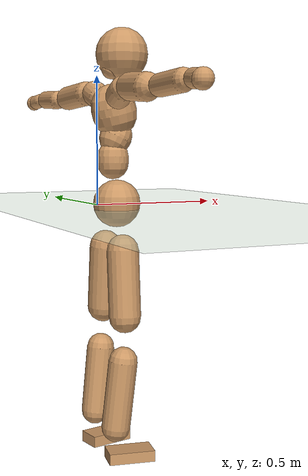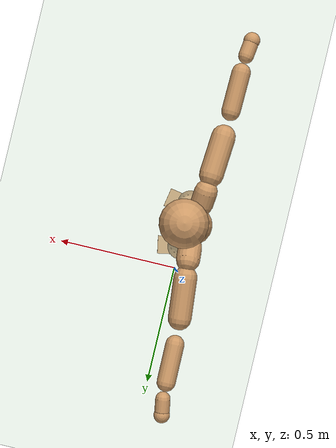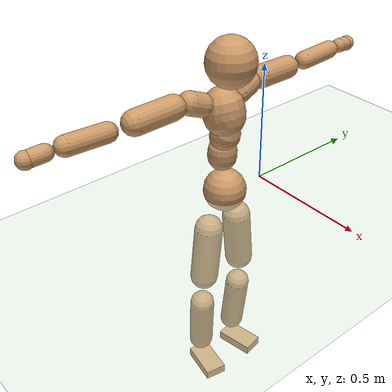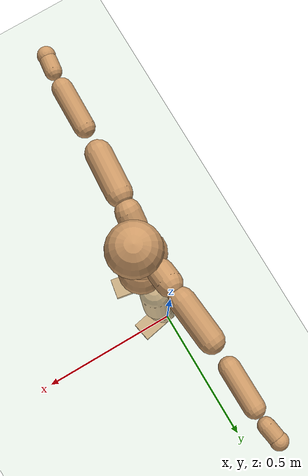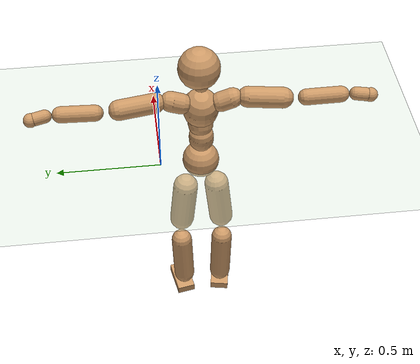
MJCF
<mujoco model="humanoid">
  <compiler coordinate="local"/>
  <default>
    <joint damping="0.0" armature="0.01" stiffness="0.0" limited="true"/>
    <geom conaffinity="1" condim="3" contype="7" margin="0.001" rgba="0.8 0.6 .4 1"/>
  </default>
  <asset>
    <texture type="skybox" builtin="gradient" rgb1=".4 .5 .6" rgb2="0 0 0" width="100" height="100"/>
    <texture builtin="flat" height="1278" mark="cross" markrgb="1 1 1" name="texgeom" random="0.01" rgb1="0.8 0.6 0.4" rgb2="0.8 0.6 0.4" type="cube" width="127"/>
    <texture builtin="checker" height="100" name="texplane" rgb1="0 0 0" rgb2="0.8 0.8 0.8" type="2d" width="100"/>
    <material name="MatPlane" reflectance="0.5" shininess="1" specular="1" texrepeat="60 60" texture="texplane"/>
    <material name="geom" texture="texgeom" texuniform="true"/>
  </asset>
  <worldbody>
    <light cutoff="100" diffuse="1 1 1" dir="-0 0 -1.3" directional="true" exponent="1" pos="0 0 1.3" specular=".1 .1 .1"/>
    <geom conaffinity="1" condim="3" name="floor" pos="0 0 0" rgba="0.8 0.9 0.8 1" size="100 100 .2" type="plane" material="MatPlane"/>
    <body name="Pelvis" pos="-0.0004 -0.1935 0.0199">
      <freejoint name="Pelvis"/>
      <geom type="sphere" contype="1" conaffinity="1" density="500" size="0.0883" pos="0.0000 0.0000 0.0000" name="Pelvis"/>
      <body name="L_Hip" pos="-0.0135 0.0699 -0.0883">
        <joint name="L_Hip_x" type="hinge" pos="0 0 0" axis="1 0 0" stiffness="800" damping="80" armature="0.02" range="-180.0000 180.0000"/>
        <joint name="L_Hip_y" type="hinge" pos="0 0 0" axis="0 1 0" stiffness="800" damping="80" armature="0.02" range="-180.0000 180.0000"/>
        <joint name="L_Hip_z" type="hinge" pos="0 0 0" axis="0 0 1" stiffness="800" damping="80" armature="0.02" range="-180.0000 180.0000"/>
        <geom type="capsule" contype="1" conaffinity="1" density="500" fromto="-0.0003 0.0075 -0.0795 -0.0014 0.0298 -0.3179" size="0.0603" name="L_Hip"/>
        <body name="L_Knee" pos="-0.0017 0.0373 -0.3974">
          <joint name="L_Knee_x" type="hinge" pos="0 0 0" axis="1 0 0" stiffness="800" damping="80" armature="0.02" range="-180.0000 180.0000"/>
          <joint name="L_Knee_y" type="hinge" pos="0 0 0" axis="0 1 0" stiffness="800" damping="80" armature="0.02" range="-180.0000 180.0000"/>
          <joint name="L_Knee_z" type="hinge" pos="0 0 0" axis="0 0 1" stiffness="800" damping="80" armature="0.02" range="-180.0000 180.0000"/>
          <geom type="capsule" contype="1" conaffinity="1" density="500" fromto="-0.0090 -0.0026 -0.0840 -0.0360 -0.0102 -0.3360" size="0.0529" name="L_Knee"/>
          <body name="L_Ankle" pos="-0.045 -0.0128 -0.42">
            <joint name="L_Ankle_x" type="hinge" pos="0 0 0" axis="1 0 0" stiffness="800" damping="80" armature="0.02" range="-180.0000 180.0000"/>
            <joint name="L_Ankle_y" type="hinge" pos="0 0 0" axis="0 1 0" stiffness="800" damping="80" armature="0.02" range="-180.0000 180.0000"/>
            <joint name="L_Ankle_z" type="hinge" pos="0 0 0" axis="0 0 1" stiffness="800" damping="80" armature="0.02" range="-180.0000 180.0000"/>
            <geom type="box" contype="1" conaffinity="1" density="500" pos="0.0598 0.0112 -0.0293" size="0.0847 0.045 0.0212" quat="0.9957 0.0000 0.0000 0.0928" name="L_Ankle"/>
            <body name="L_Toe" pos="0.1196 0.0225 -0.0586">
              <joint name="L_Toe_x" type="hinge" pos="0 0 0" axis="1 0 0" stiffness="500" damping="50" armature="0.02" range="-180.0000 180.0000"/>
              <joint name="L_Toe_y" type="hinge" pos="0 0 0" axis="0 1 0" stiffness="500" damping="50" armature="0.02" range="-180.0000 180.0000"/>
              <joint name="L_Toe_z" type="hinge" pos="0 0 0" axis="0 0 1" stiffness="500" damping="50" armature="0.02" range="-180.0000 180.0000"/>
              <geom type="box" contype="1" conaffinity="1" density="500" pos="0.0000 0.0000 0.0288" size="0.0009 0.0023 0.001" quat="0.9951 0.0000 0.0000 0.0992" name="L_Toe"/>
            </body>
          </body>
        </body>
      </body>
      <body name="R_Hip" pos="-0.0092 -0.0678 -0.0869">
        <joint name="R_Hip_x" type="hinge" pos="0 0 0" axis="1 0 0" stiffness="800" damping="80" armature="0.02" range="-180.0000 180.0000"/>
        <joint name="R_Hip_y" type="hinge" pos="0 0 0" axis="0 1 0" stiffness="800" damping="80" armature="0.02" range="-180.0000 180.0000"/>
        <joint name="R_Hip_z" type="hinge" pos="0 0 0" axis="0 0 1" stiffness="800" damping="80" armature="0.02" range="-180.0000 180.0000"/>
        <geom type="capsule" contype="1" conaffinity="1" density="500" fromto="-0.0009 -0.0087 -0.0808 -0.0037 -0.0346 -0.3232" size="0.0595" name="R_Hip"/>
        <body name="R_Knee" pos="-0.0047 -0.0433 -0.4041">
          <joint name="R_Knee_x" type="hinge" pos="0 0 0" axis="1 0 0" stiffness="800" damping="80" armature="0.02" range="-180.0000 180.0000"/>
          <joint name="R_Knee_y" type="hinge" pos="0 0 0" axis="0 1 0" stiffness="800" damping="80" armature="0.02" range="-180.0000 180.0000"/>
          <joint name="R_Knee_z" type="hinge" pos="0 0 0" axis="0 0 1" stiffness="800" damping="80" armature="0.02" range="-180.0000 180.0000"/>
          <geom type="capsule" contype="1" conaffinity="1" density="500" fromto="-0.0085 0.0032 -0.0840 -0.0342 0.0128 -0.3362" size="0.0532" name="R_Knee"/>
          <body name="R_Ankle" pos="-0.0427 0.016 -0.4202">
            <joint name="R_Ankle_x" type="hinge" pos="0 0 0" axis="1 0 0" stiffness="800" damping="80" armature="0.02" range="-180.0000 180.0000"/>
            <joint name="R_Ankle_y" type="hinge" pos="0 0 0" axis="0 1 0" stiffness="800" damping="80" armature="0.02" range="-180.0000 180.0000"/>
            <joint name="R_Ankle_z" type="hinge" pos="0 0 0" axis="0 0 1" stiffness="800" damping="80" armature="0.02" range="-180.0000 180.0000"/>
            <geom type="box" contype="1" conaffinity="1" density="500" pos="0.0616 -0.0112 -0.0250" size="0.0865 0.0465 0.0208" quat="0.9959 0.0000 0.0000 -0.0900" name="R_Ankle"/>
            <body name="R_Toe" pos="0.1233 -0.0225 -0.0501">
              <joint name="R_Toe_x" type="hinge" pos="0 0 0" axis="1 0 0" stiffness="500" damping="50" armature="0.02" range="-180.0000 180.0000"/>
              <joint name="R_Toe_y" type="hinge" pos="0 0 0" axis="0 1 0" stiffness="500" damping="50" armature="0.02" range="-180.0000 180.0000"/>
              <joint name="R_Toe_z" type="hinge" pos="0 0 0" axis="0 0 1" stiffness="500" damping="50" armature="0.02" range="-180.0000 180.0000"/>
              <geom type="box" contype="1" conaffinity="1" density="500" pos="0.0000 0.0000 0.0268" size="0.0009 0.0023 0.0011" quat="0.9967 0.0000 0.0000 -0.0809" name="R_Toe"/>
            </body>
          </body>
        </body>
      </body>
      <body name="Torso" pos="-0.0158 -0.002 0.1005">
        <joint name="Torso_x" type="hinge" pos="0 0 0" axis="1 0 0" stiffness="1000" damping="100" armature="0.02" range="-180.0000 180.0000"/>
        <joint name="Torso_y" type="hinge" pos="0 0 0" axis="0 1 0" stiffness="1000" damping="100" armature="0.02" range="-180.0000 180.0000"/>
        <joint name="Torso_z" type="hinge" pos="0 0 0" axis="0 0 1" stiffness="1000" damping="100" armature="0.02" range="-180.0000 180.0000"/>
        <geom type="capsule" contype="1" conaffinity="1" density="500" fromto="0.0005 0.0018 0.0727 0.0003 0.0012 0.0485" size="0.058497" name="Torso"/>
        <body name="Spine" pos="0.0008 0.003 0.1212">
          <joint name="Spine_x" type="hinge" pos="0 0 0" axis="1 0 0" stiffness="1000" damping="100" armature="0.02" range="-180.0000 180.0000"/>
          <joint name="Spine_y" type="hinge" pos="0 0 0" axis="0 1 0" stiffness="1000" damping="100" armature="0.02" range="-180.0000 180.0000"/>
          <joint name="Spine_z" type="hinge" pos="0 0 0" axis="0 0 1" stiffness="1000" damping="100" armature="0.02" range="-180.0000 180.0000"/>
          <geom type="capsule" contype="1" conaffinity="1" density="500" fromto="0.0140 0.0009 0.0284 0.0093 0.0006 0.0189" size="0.059985" name="Spine"/>
          <body name="Chest" pos="0.0233 0.0016 0.0473">
            <joint name="Chest_x" type="hinge" pos="0 0 0" axis="1 0 0" stiffness="1000" damping="100" armature="0.02" range="-180.0000 180.0000"/>
            <joint name="Chest_y" type="hinge" pos="0 0 0" axis="0 1 0" stiffness="1000" damping="100" armature="0.02" range="-180.0000 180.0000"/>
            <joint name="Chest_z" type="hinge" pos="0 0 0" axis="0 0 1" stiffness="1000" damping="100" armature="0.02" range="-180.0000 180.0000"/>
            <geom type="capsule" contype="1" conaffinity="1" density="500" fromto="-0.0227 -0.0013 0.0869 -0.0151 -0.0008 0.0579" size="0.082677" name="Chest"/>
            <body name="Neck" pos="-0.04 -0.0037 0.208">
              <joint name="Neck_x" type="hinge" pos="0 0 0" axis="1 0 0" stiffness="500" damping="50" armature="0.02" range="-180.0000 180.0000"/>
              <joint name="Neck_y" type="hinge" pos="0 0 0" axis="0 1 0" stiffness="500" damping="50" armature="0.02" range="-180.0000 180.0000"/>
              <joint name="Neck_z" type="hinge" pos="0 0 0" axis="0 0 1" stiffness="500" damping="50" armature="0.02" range="-180.0000 180.0000"/>
              <geom type="capsule" contype="1" conaffinity="1" density="500" fromto="0.0109 0.0012 0.0136 0.0435 0.0047 0.0545" size="0.036921" name="Neck"/>
              <body name="Head" pos="0.0544 0.0059 0.0682">
                <joint name="Head_x" type="hinge" pos="0 0 0" axis="1 0 0" stiffness="500" damping="50" armature="0.02" range="-180.0000 180.0000"/>
                <joint name="Head_y" type="hinge" pos="0 0 0" axis="0 1 0" stiffness="500" damping="50" armature="0.02" range="-180.0000 180.0000"/>
                <joint name="Head_z" type="hinge" pos="0 0 0" axis="0 0 1" stiffness="500" damping="50" armature="0.02" range="-180.0000 180.0000"/>
                <geom type="sphere" contype="1" conaffinity="1" density="500" size="0.0966" pos="0.0000 0.0000 0.0000" name="Head"/>
              </body>
            </body>
            <body name="L_Thorax" pos="-0.0346 0.0708 0.114">
              <joint name="L_Thorax_x" type="hinge" pos="0 0 0" axis="1 0 0" stiffness="500" damping="50" armature="0.02" range="-180.0000 180.0000"/>
              <joint name="L_Thorax_y" type="hinge" pos="0 0 0" axis="0 1 0" stiffness="500" damping="50" armature="0.02" range="-180.0000 180.0000"/>
              <joint name="L_Thorax_z" type="hinge" pos="0 0 0" axis="0 0 1" stiffness="500" damping="50" armature="0.02" range="-180.0000 180.0000"/>
              <geom type="capsule" contype="1" conaffinity="1" density="500" fromto="-0.0010 0.0164 0.0067 -0.0040 0.0656 0.0270" size="0.0475" name="L_Thorax"/>
              <body name="L_Shoulder" pos="-0.005 0.082 0.0337">
                <joint name="L_Shoulder_x" type="hinge" pos="0 0 0" axis="1 0 0" stiffness="500" damping="50" armature="0.02" range="-720.0000 720.0000"/>
                <joint name="L_Shoulder_y" type="hinge" pos="0 0 0" axis="0 1 0" stiffness="500" damping="50" armature="0.02" range="-720.0000 720.0000"/>
                <joint name="L_Shoulder_z" type="hinge" pos="0 0 0" axis="0 0 1" stiffness="500" damping="50" armature="0.02" range="-720.0000 720.0000"/>
                <geom type="capsule" contype="1" conaffinity="1" density="500" fromto="-0.0052 0.0538 -0.0035 -0.0210 0.2150 -0.0141" size="0.0468" name="L_Shoulder"/>
                <body name="L_Elbow" pos="-0.0262 0.2688 -0.0176">
                  <joint name="L_Elbow_x" type="hinge" pos="0 0 0" axis="1 0 0" stiffness="500" damping="50" armature="0.02" range="-720.0000 720.0000"/>
                  <joint name="L_Elbow_y" type="hinge" pos="0 0 0" axis="0 1 0" stiffness="500" damping="50" armature="0.02" range="-720.0000 720.0000"/>
                  <joint name="L_Elbow_z" type="hinge" pos="0 0 0" axis="0 0 1" stiffness="500" damping="50" armature="0.02" range="-720.0000 720.0000"/>
                  <geom type="capsule" contype="1" conaffinity="1" density="500" fromto="-0.0003 0.0507 0.0022 -0.0011 0.2029 0.0088" size="0.0372" name="L_Elbow"/>
                  <body name="L_Wrist" pos="-0.0013 0.2537 0.0109">
                    <joint name="L_Wrist_x" type="hinge" pos="0 0 0" axis="1 0 0" stiffness="300" damping="30" armature="0.02" range="-180.0000 180.0000"/>
                    <joint name="L_Wrist_y" type="hinge" pos="0 0 0" axis="0 1 0" stiffness="300" damping="30" armature="0.02" range="-180.0000 180.0000"/>
                    <joint name="L_Wrist_z" type="hinge" pos="0 0 0" axis="0 0 1" stiffness="300" damping="30" armature="0.02" range="-180.0000 180.0000"/>
                    <geom type="capsule" contype="1" conaffinity="1" density="500" fromto="-0.0027 0.0160 -0.0020 -0.0108 0.0641 -0.0080" size="0.0298" name="L_Wrist"/>
                    <body name="L_Hand" pos="-0.0135 0.0801 -0.01">
                      <joint name="L_Hand_x" type="hinge" pos="0 0 0" axis="1 0 0" stiffness="300" damping="30" armature="0.02" range="-180.0000 180.0000"/>
                      <joint name="L_Hand_y" type="hinge" pos="0 0 0" axis="0 1 0" stiffness="300" damping="30" armature="0.02" range="-180.0000 180.0000"/>
                      <joint name="L_Hand_z" type="hinge" pos="0 0 0" axis="0 0 1" stiffness="300" damping="30" armature="0.02" range="-180.0000 180.0000"/>
                      <geom type="sphere" contype="1" conaffinity="1" density="500" size="0.0321" pos="0.0000 0.0000 0.0000" name="L_Hand"/>
                    </body>
                  </body>
                </body>
              </body>
            </body>
            <body name="R_Thorax" pos="-0.0388 -0.0734 0.1126">
              <joint name="R_Thorax_x" type="hinge" pos="0 0 0" axis="1 0 0" stiffness="500" damping="50" armature="0.02" range="-180.0000 180.0000"/>
              <joint name="R_Thorax_y" type="hinge" pos="0 0 0" axis="0 1 0" stiffness="500" damping="50" armature="0.02" range="-180.0000 180.0000"/>
              <joint name="R_Thorax_z" type="hinge" pos="0 0 0" axis="0 0 1" stiffness="500" damping="50" armature="0.02" range="-180.0000 180.0000"/>
              <geom type="capsule" contype="1" conaffinity="1" density="500" fromto="-0.0014 -0.0170 0.0072 -0.0055 -0.0679 0.0287" size="0.0464" name="R_Thorax"/>
              <body name="R_Shoulder" pos="-0.0069 -0.0849 0.0359">
                <joint name="R_Shoulder_x" type="hinge" pos="0 0 0" axis="1 0 0" stiffness="500" damping="50" armature="0.02" range="-720.0000 720.0000"/>
                <joint name="R_Shoulder_y" type="hinge" pos="0 0 0" axis="0 1 0" stiffness="500" damping="50" armature="0.02" range="-720.0000 720.0000"/>
                <joint name="R_Shoulder_z" type="hinge" pos="0 0 0" axis="0 0 1" stiffness="500" damping="50" armature="0.02" range="-720.0000 720.0000"/>
                <geom type="capsule" contype="1" conaffinity="1" density="500" fromto="-0.0040 -0.0524 -0.0036 -0.0160 -0.2095 -0.0143" size="0.0485" name="R_Shoulder"/>
                <body name="R_Elbow" pos="-0.02 -0.2619 -0.0179">
                  <joint name="R_Elbow_x" type="hinge" pos="0 0 0" axis="1 0 0" stiffness="500" damping="50" armature="0.02" range="-720.0000 720.0000"/>
                  <joint name="R_Elbow_y" type="hinge" pos="0 0 0" axis="0 1 0" stiffness="500" damping="50" armature="0.02" range="-720.0000 720.0000"/>
                  <joint name="R_Elbow_z" type="hinge" pos="0 0 0" axis="0 0 1" stiffness="500" damping="50" armature="0.02" range="-720.0000 720.0000"/>
                  <geom type="capsule" contype="1" conaffinity="1" density="500" fromto="-0.0012 -0.0524 0.0016 -0.0049 -0.2098 0.0065" size="0.0375" name="R_Elbow"/>
                  <body name="R_Wrist" pos="-0.0062 -0.2622 0.0081">
                    <joint name="R_Wrist_x" type="hinge" pos="0 0 0" axis="1 0 0" stiffness="300" damping="30" armature="0.02" range="-180.0000 180.0000"/>
                    <joint name="R_Wrist_y" type="hinge" pos="0 0 0" axis="0 1 0" stiffness="300" damping="30" armature="0.02" range="-180.0000 180.0000"/>
                    <joint name="R_Wrist_z" type="hinge" pos="0 0 0" axis="0 0 1" stiffness="300" damping="30" armature="0.02" range="-180.0000 180.0000"/>
                    <geom type="capsule" contype="1" conaffinity="1" density="500" fromto="-0.0021 -0.0163 -0.0015 -0.0085 -0.0653 -0.0061" size="0.0308" name="R_Wrist"/>
                    <body name="R_Hand" pos="-0.0106 -0.0816 -0.0076">
                      <joint name="R_Hand_x" type="hinge" pos="0 0 0" axis="1 0 0" stiffness="300" damping="30" armature="0.02" range="-180.0000 180.0000"/>
                      <joint name="R_Hand_y" type="hinge" pos="0 0 0" axis="0 1 0" stiffness="300" damping="30" armature="0.02" range="-180.0000 180.0000"/>
                      <joint name="R_Hand_z" type="hinge" pos="0 0 0" axis="0 0 1" stiffness="300" damping="30" armature="0.02" range="-180.0000 180.0000"/>
                      <geom type="sphere" contype="1" conaffinity="1" density="500" size="0.0326" pos="0.0000 0.0000 0.0000" name="R_Hand"/>
                    </body>
                  </body>
                </body>
              </body>
            </body>
          </body>
        </body>
      </body>
    </body>
  </worldbody>
  <actuator>
    <motor name="L_Hip_x" joint="L_Hip_x" gear="500"/>
    <motor name="L_Hip_y" joint="L_Hip_y" gear="500"/>
    <motor name="L_Hip_z" joint="L_Hip_z" gear="500"/>
    <motor name="L_Knee_x" joint="L_Knee_x" gear="500"/>
    <motor name="L_Knee_y" joint="L_Knee_y" gear="500"/>
    <motor name="L_Knee_z" joint="L_Knee_z" gear="500"/>
    <motor name="L_Ankle_x" joint="L_Ankle_x" gear="500"/>
    <motor name="L_Ankle_y" joint="L_Ankle_y" gear="500"/>
    <motor name="L_Ankle_z" joint="L_Ankle_z" gear="500"/>
    <motor name="L_Toe_x" joint="L_Toe_x" gear="500"/>
    <motor name="L_Toe_y" joint="L_Toe_y" gear="500"/>
    <motor name="L_Toe_z" joint="L_Toe_z" gear="500"/>
    <motor name="R_Hip_x" joint="R_Hip_x" gear="500"/>
    <motor name="R_Hip_y" joint="R_Hip_y" gear="500"/>
    <motor name="R_Hip_z" joint="R_Hip_z" gear="500"/>
    <motor name="R_Knee_x" joint="R_Knee_x" gear="500"/>
    <motor name="R_Knee_y" joint="R_Knee_y" gear="500"/>
    <motor name="R_Knee_z" joint="R_Knee_z" gear="500"/>
    <motor name="R_Ankle_x" joint="R_Ankle_x" gear="500"/>
    <motor name="R_Ankle_y" joint="R_Ankle_y" gear="500"/>
    <motor name="R_Ankle_z" joint="R_Ankle_z" gear="500"/>
    <motor name="R_Toe_x" joint="R_Toe_x" gear="500"/>
    <motor name="R_Toe_y" joint="R_Toe_y" gear="500"/>
    <motor name="R_Toe_z" joint="R_Toe_z" gear="500"/>
    <motor name="Torso_x" joint="Torso_x" gear="500"/>
    <motor name="Torso_y" joint="Torso_y" gear="500"/>
    <motor name="Torso_z" joint="Torso_z" gear="500"/>
    <motor name="Spine_x" joint="Spine_x" gear="500"/>
    <motor name="Spine_y" joint="Spine_y" gear="500"/>
    <motor name="Spine_z" joint="Spine_z" gear="500"/>
    <motor name="Chest_x" joint="Chest_x" gear="500"/>
    <motor name="Chest_y" joint="Chest_y" gear="500"/>
    <motor name="Chest_z" joint="Chest_z" gear="500"/>
    <motor name="Neck_x" joint="Neck_x" gear="500"/>
    <motor name="Neck_y" joint="Neck_y" gear="500"/>
    <motor name="Neck_z" joint="Neck_z" gear="500"/>
    <motor name="Head_x" joint="Head_x" gear="500"/>
    <motor name="Head_y" joint="Head_y" gear="500"/>
    <motor name="Head_z" joint="Head_z" gear="500"/>
    <motor name="L_Thorax_x" joint="L_Thorax_x" gear="500"/>
    <motor name="L_Thorax_y" joint="L_Thorax_y" gear="500"/>
    <motor name="L_Thorax_z" joint="L_Thorax_z" gear="500"/>
    <motor name="L_Shoulder_x" joint="L_Shoulder_x" gear="500"/>
    <motor name="L_Shoulder_y" joint="L_Shoulder_y" gear="500"/>
    <motor name="L_Shoulder_z" joint="L_Shoulder_z" gear="500"/>
    <motor name="L_Elbow_x" joint="L_Elbow_x" gear="500"/>
    <motor name="L_Elbow_y" joint="L_Elbow_y" gear="500"/>
    <motor name="L_Elbow_z" joint="L_Elbow_z" gear="500"/>
    <motor name="L_Wrist_x" joint="L_Wrist_x" gear="500"/>
    <motor name="L_Wrist_y" joint="L_Wrist_y" gear="500"/>
    <motor name="L_Wrist_z" joint="L_Wrist_z" gear="500"/>
    <motor name="L_Hand_x" joint="L_Hand_x" gear="500"/>
    <motor name="L_Hand_y" joint="L_Hand_y" gear="500"/>
    <motor name="L_Hand_z" joint="L_Hand_z" gear="500"/>
    <motor name="R_Thorax_x" joint="R_Thorax_x" gear="500"/>
    <motor name="R_Thorax_y" joint="R_Thorax_y" gear="500"/>
    <motor name="R_Thorax_z" joint="R_Thorax_z" gear="500"/>
    <motor name="R_Shoulder_x" joint="R_Shoulder_x" gear="500"/>
    <motor name="R_Shoulder_y" joint="R_Shoulder_y" gear="500"/>
    <motor name="R_Shoulder_z" joint="R_Shoulder_z" gear="500"/>
    <motor name="R_Elbow_x" joint="R_Elbow_x" gear="500"/>
    <motor name="R_Elbow_y" joint="R_Elbow_y" gear="500"/>
    <motor name="R_Elbow_z" joint="R_Elbow_z" gear="500"/>
    <motor name="R_Wrist_x" joint="R_Wrist_x" gear="500"/>
    <motor name="R_Wrist_y" joint="R_Wrist_y" gear="500"/>
    <motor name="R_Wrist_z" joint="R_Wrist_z" gear="500"/>
    <motor name="R_Hand_x" joint="R_Hand_x" gear="500"/>
    <motor name="R_Hand_y" joint="R_Hand_y" gear="500"/>
    <motor name="R_Hand_z" joint="R_Hand_z" gear="500"/>
  </actuator>
  <contact>
    <exclude body1="Torso" body2="Chest"/>
    <exclude body1="Head" body2="Chest"/>
    <exclude body1="R_Knee" body2="R_Toe"/>
    <exclude body1="R_Knee" body2="L_Ankle"/>
    <exclude body1="R_Knee" body2="L_Toe"/>
    <exclude body1="L_Knee" body2="L_Toe"/>
    <exclude body1="L_Knee" body2="R_Ankle"/>
    <exclude body1="L_Knee" body2="R_Toe"/>
    <exclude body1="L_Shoulder" body2="Chest"/>
    <exclude body1="R_Shoulder" body2="Chest"/>
  </contact>
  <sensor/>
  <size njmax="700" nconmax="700"/>
</mujoco>
